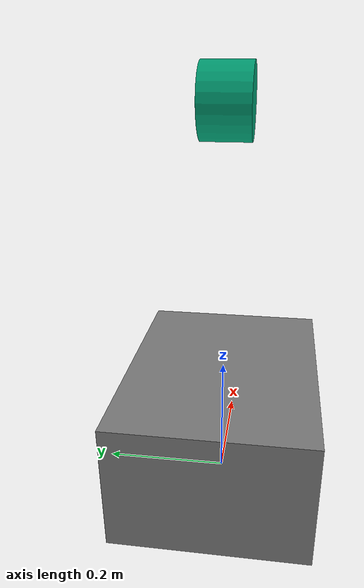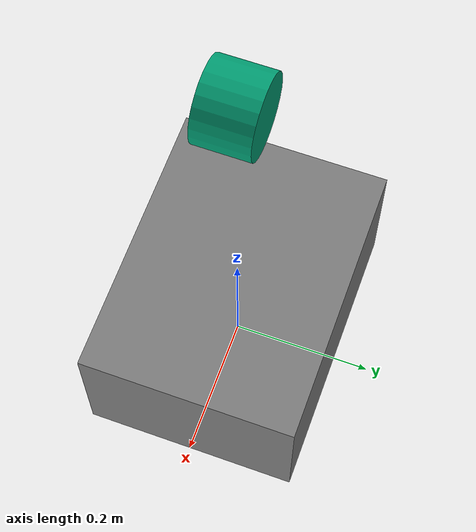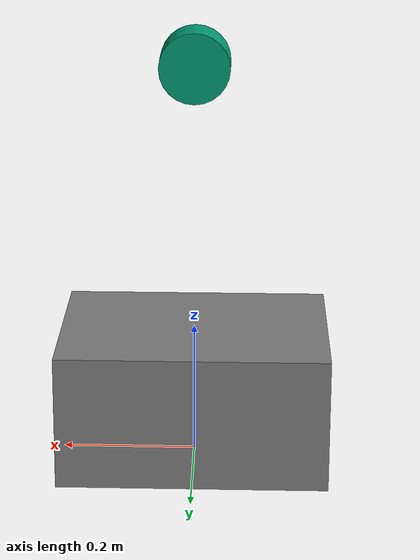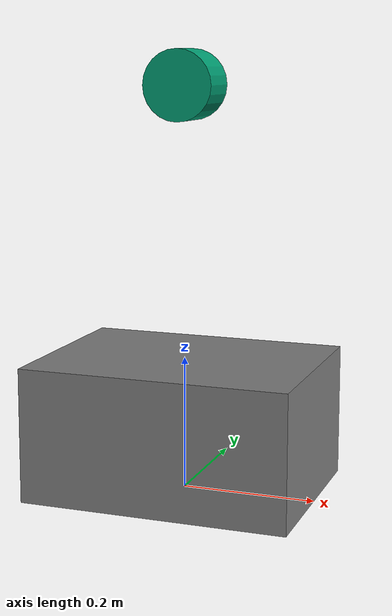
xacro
<?xml version="1.0"?>
<robot
  xmlns:xacro="http://ros.org/wiki/xacro"
  xmlns:controller="http://playerstage.sourceforge.net/gazebo/xmlschema/#controller"
  xmlns:interface="http://playerstage.sourceforge.net/gazebo/xmlschema/#interface"
  xmlns:sensor="http://playerstage.sourceforge.net/gazebo/xmlschema/#sensor"
  name="robot_sensor">

<xacro:property name="M_PI" value="3.14159265359"/>

<link name="base_footprint">
</link>

<link name="base_link">
  <visual>
    <origin xyz="0 0 0" rpy="0 0 0" />
    <geometry>
      <box size="0.4 0.3 0.2"/>
    </geometry>
    <material name="silver" >
      <color rgba="0.5 0.5 0.5 1" />
    </material>
  </visual>
  <collision>
    <origin xyz="0 0 0" rpy="0 0 0" />
    <geometry>
      <box size="0.4 0.3 0.2"/>
    </geometry>
  </collision>
  <inertial>
      <mass value="10.0" />
      <origin xyz="0 0 0" />
      <inertia ixx="${0.0833333 * 10.0 * (0.3*0.3 + 0.2*0.2)}" ixy="0.0" ixz="0.0"
        iyy="${0.0833333 * 10.0 * (0.4*0.4 + 0.2*0.2)}" iyz="0.0"
        izz="${0.0833333 * 10.0 * (0.4*0.4 + 0.3*0.3)}" />
    </inertial>
</link>

<joint name="base_to_bf_joint" type="fixed">
  <parent link="base_footprint" />
  <child link="base_link" />
  <origin xyz="0 0 0.1" />
</joint>

<!-- 2D  Rotating LASER -->
<link name="laser2d">
  <collision>
    <origin xyz="0.0 0.0 0.0" rpy="0 0 0"/>
    <geometry>
      <cylinder radius="0.0516" length="0.0717"/>
    </geometry>
  </collision>
  <visual>
    <origin xyz="0 0 0.0" rpy="0 0 0" />
    <geometry>
      <cylinder radius="0.0516" length="0.0717"/>
    </geometry>
  </visual>
  <inertial>
    <mass value="0.83"/>
    <origin xyz="0 0 0.0"/>
    <inertia ixx="${(0.83 * (3.0*0.0516*0.0516 + 0.0717*0.0717)) / 12.0}" ixy="0" ixz="0"
      iyy="${(0.83 * (3.0*0.0516*0.0516 + 0.0717*0.0717)) / 12.0}" iyz="0"
      izz="${0.5 * 0.83 * (0.0516*0.0516)}"/>
  </inertial>
</link>

<gazebo reference="laser2d">
  <rmagine_ignore/>
</gazebo>

<joint name="laser2d_to_base_joint" type="continuous">
  <parent link="base_link" />
  <child link="laser2d" />
  <origin xyz="0 0 0.5" rpy="${M_PI/2.0} 0.0 0.0" />
  <axis xyz="0 1 0"/>
</joint>

<gazebo reference="laser2d">
  <sensor type="rmagine_embree_spherical" name="laser2d">
    <pose>0 0 0 0 0 0</pose>
    <always_on>true</always_on>
    <update_rate>60</update_rate>

    <ray>
      <scan>
        <horizontal>
          <min_angle>${-60.0 * M_PI / 180.0}</min_angle>
          <increment>${0.01 * M_PI / 180.0}</increment>
          <samples>12000</samples>
        </horizontal>
      </scan>

      <range>
        <min>0.2</min>
        <max>100.0</max>
      </range>

    </ray>

    <plugin name="rmagine_ros_laser3d" filename="librmagine_embree_ros_gzplugin.so">
        <frame>laser2d</frame>

      <outputs>
        <output name="scan">
          <msg>sensor_msgs/LaserScan</msg>
          <topic>laser2d/scan</topic>
        </output>

        <output name="pcl">
          <msg>sensor_msgs/PointCloud</msg>
          <topic>laser2d/pcl</topic>
        </output>

      </outputs>
    </plugin>
  </sensor>
</gazebo>

<gazebo>
  <plugin name="joint_state_publisher" filename="libgazebo_ros_joint_state_publisher.so">
    <joint_name>laser2d_to_base_joint</joint_name>
  </plugin>
</gazebo>

</robot>
